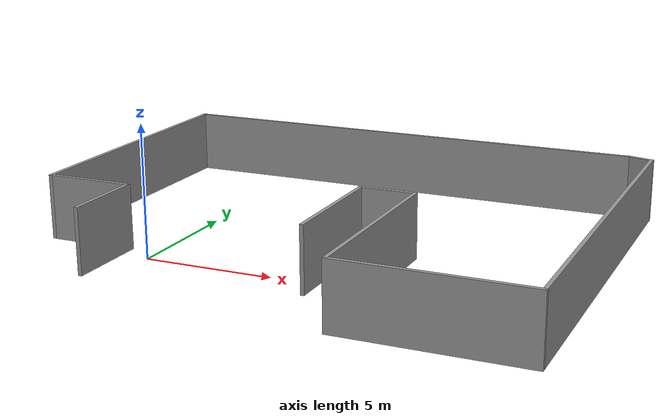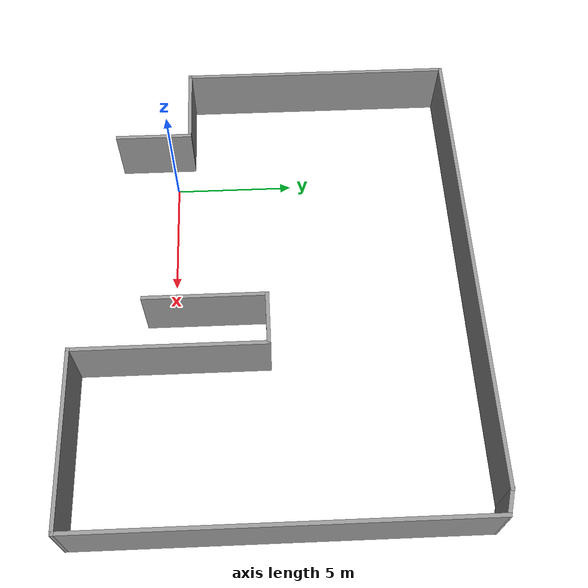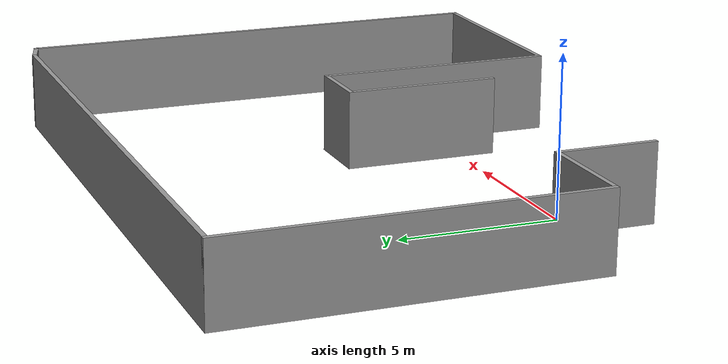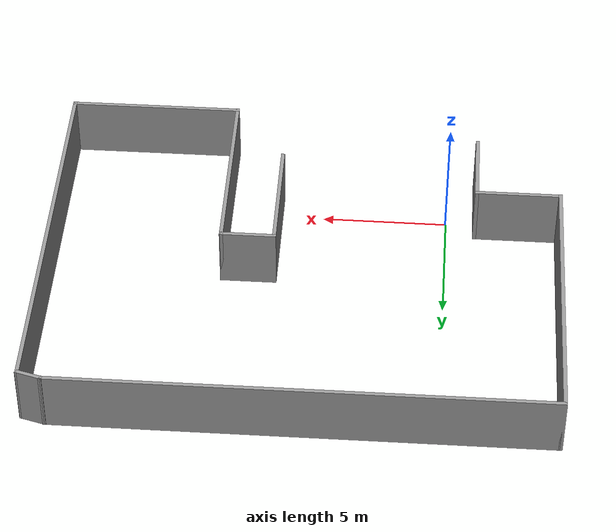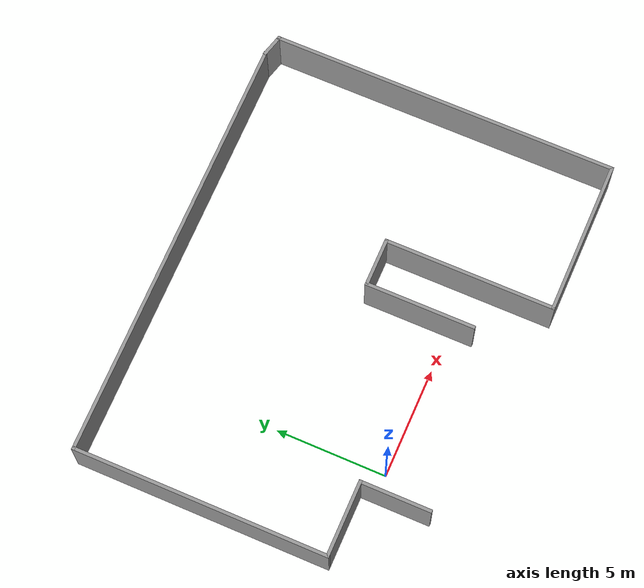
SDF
<sdf version="1.6">
 <world name="default">
  <light name="sun" type="directional">
   <pose>0 0 10 0 -0 0</pose>
   <diffuse>0.8 0.8 0.8 1</diffuse>
   <specular>0.1 0.1 0.1 1</specular>
   <attenuation>
    <range>1000</range>
    <constant>0.9</constant>
    <linear>0.01</linear>
    <quadratic>0.001</quadratic>
   </attenuation>
   <direction>-0.5 0.5 -1</direction>
  </light>
  <gravity>0 0 -9.8</gravity>
  <magnetic_field>6e-06 2.3e-05 -4.2e-05</magnetic_field>
  <atmosphere type="adiabatic"/>
  <physics name="default_physics" default="0" type="ode">
   <max_step_size>0.001</max_step_size>
   <real_time_factor>1</real_time_factor>
   <real_time_update_rate>1000</real_time_update_rate>
  </physics>
  <scene><ambient>0.4 0.4 0.4 1</ambient><background>0.7 0.7 0.7 1</background><shadows>1</shadows></scene>
  <spherical_coordinates>
   <surface_model>EARTH_WGS84</surface_model>
   <latitude_deg>0</latitude_deg>
   <longitude_deg>0</longitude_deg>
   <elevation>0</elevation>
   <heading_deg>0</heading_deg>
  </spherical_coordinates>
  <model name="room">
   <pose>5.60096 4.11911 0 0 -0 0</pose>
   <link name="Wall_19">
    <collision name="Wall_19_Collision">
     <geometry><box><size>3.25 0.15 2.5</size></box></geometry>
     <pose>0 0 1.25 0 -0 0</pose>
    </collision>
    <visual name="Wall_19_Visual">
     <pose>0 0 1.25 0 -0 0</pose>
     <geometry><box><size>3.25 0.15 2.5</size></box></geometry>
     <material>
      <script><uri>file://media/materials/scripts/gazebo.material</uri><name>Gazebo/Grey</name></script>
      <ambient>1 1 1 1</ambient>
     </material>
     <meta><layer>0</layer></meta>
    </visual>
    <pose>-6.78367 -4.98367 0 0 0 -1.5708</pose>
   </link>
   <link name="Wall_23">
    <collision name="Wall_23_Collision">
     <geometry><box><size>5 0.15 2.5</size></box></geometry>
     <pose>0 0 1.25 0 -0 0</pose>
    </collision>
    <visual name="Wall_23_Visual">
     <pose>0 0 1.25 0 -0 0</pose>
     <geometry><box><size>5 0.15 2.5</size></box></geometry>
     <material>
      <script><uri>file://media/materials/scripts/gazebo.material</uri><name>Gazebo/Grey</name></script>
      <ambient>1 1 1 1</ambient>
     </material>
     <meta><layer>0</layer></meta>
    </visual>
    <pose>1.16633 -2.75867 0 0 -0 1.5708</pose>
   </link>
   <link name="Wall_24">
    <collision name="Wall_24_Collision">
     <geometry><box><size>2.25 0.15 2.5</size></box></geometry>
     <pose>0 0 1.25 0 -0 0</pose>
    </collision>
    <visual name="Wall_24_Visual">
     <pose>0 0 1.25 0 -0 0</pose>
     <geometry><box><size>2.25 0.15 2.5</size></box></geometry>
     <material>
      <script><uri>file://media/materials/scripts/gazebo.material</uri><name>Gazebo/Grey</name></script>
      <ambient>1 1 1 1</ambient>
     </material>
     <meta><layer>0</layer></meta>
    </visual>
    <pose>2.21633 -0.333668 0 0 -0 0</pose>
   </link>
   <link name="Wall_25">
    <collision name="Wall_25_Collision">
     <geometry><box><size>7.75 0.15 2.5</size></box></geometry>
     <pose>0 0 1.25 0 -0 0</pose>
    </collision>
    <visual name="Wall_25_Visual">
     <pose>0 0 1.25 0 -0 0</pose>
     <geometry><box><size>7.75 0.15 2.5</size></box></geometry>
     <material>
      <script><uri>file://media/materials/scripts/gazebo.material</uri><name>Gazebo/Grey</name></script>
      <ambient>1 1 1 1</ambient>
     </material>
     <meta><layer>0</layer></meta>
    </visual>
    <pose>3.26633 -4.13367 0 0 0 -1.5708</pose>
   </link>
   <link name="Wall_26">
    <collision name="Wall_26_Collision">
     <geometry><box><size>7 0.15 2.5</size></box></geometry>
     <pose>0 0 1.25 0 -0 0</pose>
    </collision>
    <visual name="Wall_26_Visual">
     <pose>0 0 1.25 0 -0 0</pose>
     <geometry><box><size>7 0.15 2.5</size></box></geometry>
     <material>
      <script><uri>file://media/materials/scripts/gazebo.material</uri><name>Gazebo/Grey</name></script>
      <ambient>1 1 1 1</ambient>
     </material>
     <meta><layer>0</layer></meta>
    </visual>
    <pose>6.69133 -7.93367 0 0 -0 0</pose>
   </link>
   <link name="Wall_27">
    <collision name="Wall_27_Collision">
     <geometry><box><size>15.75 0.15 2.5</size></box></geometry>
     <pose>0 0 1.25 0 -0 0</pose>
    </collision>
    <visual name="Wall_27_Visual">
     <pose>0 0 1.25 0 -0 0</pose>
     <geometry><box><size>15.75 0.15 2.5</size></box></geometry>
     <material>
      <script><uri>file://media/materials/scripts/gazebo.material</uri><name>Gazebo/Grey</name></script>
      <ambient>1 1 1 1</ambient>
     </material>
     <meta><layer>0</layer></meta>
    </visual>
    <pose>10.1163 -0.133668 0 0 -0 1.5708</pose>
   </link>
   <link name="Wall_28">
    <collision name="Wall_28_Collision">
     <geometry><box><size>1.08408 0.15 2.5</size></box></geometry>
     <pose>0 0 1.25 0 -0 0</pose>
    </collision>
    <visual name="Wall_28_Visual">
     <pose>0 0 1.25 0 -0 0</pose>
     <geometry><box><size>1.08408 0.15 2.5</size></box></geometry>
     <material>
      <script><uri>file://media/materials/scripts/gazebo.material</uri><name>Gazebo/Grey</name></script>
      <ambient>1 1 1 1</ambient>
     </material>
     <meta><layer>0</layer></meta>
    </visual>
    <pose>9.66633 7.79133 0 0 -0 2.87065</pose>
   </link>
   <link name="Wall_3">
    <collision name="Wall_3_Collision">
     <geometry><box><size>3.5 0.15 2.5</size></box></geometry>
     <pose>0 0 1.25 0 -0 0</pose>
    </collision>
    <visual name="Wall_3_Visual">
     <pose>0 0 1.25 0 -0 0</pose>
     <geometry><box><size>3.5 0.15 2.5</size></box></geometry>
     <material>
      <script><uri>file://media/materials/scripts/gazebo.material</uri><name>Gazebo/Grey</name></script>
      <ambient>1 1 1 1</ambient>
     </material>
     <meta><layer>0</layer></meta>
    </visual>
    <pose>-8.45867 -3.43367 0 0 -0 3.14159</pose>
   </link>
   <link name="Wall_4">
    <collision name="Wall_4_Collision">
     <geometry><box><size>11.5 0.15 2.5</size></box></geometry>
     <pose>0 0 1.25 0 -0 0</pose>
    </collision>
    <visual name="Wall_4_Visual">
     <pose>0 0 1.25 0 -0 0</pose>
     <geometry><box><size>11.5 0.15 2.5</size></box></geometry>
     <material>
      <script><uri>file://media/materials/scripts/gazebo.material</uri><name>Gazebo/Grey</name></script>
      <ambient>1 1 1 1</ambient>
     </material>
     <meta><layer>0</layer></meta>
    </visual>
    <pose>-10.1337 2.24133 0 0 -0 1.5708</pose>
   </link>
   <link name="Wall_5">
    <collision name="Wall_5_Collision">
     <geometry><box><size>19.5 0.15 2.5</size></box></geometry>
     <pose>0 0 1.25 0 -0 0</pose>
    </collision>
    <visual name="Wall_5_Visual">
     <pose>0 0 1.25 0 -0 0</pose>
     <geometry><box><size>19.5 0.15 2.5</size></box></geometry>
     <material>
      <script><uri>file://media/materials/scripts/gazebo.material</uri><name>Gazebo/Grey</name></script>
      <ambient>1 1 1 1</ambient>
     </material>
     <meta><layer>0</layer></meta>
    </visual>
    <pose>-0.458668 7.91633 0 0 -0 0</pose>
   </link>
   <static>1</static>
  </model>
 </world>
</sdf>
